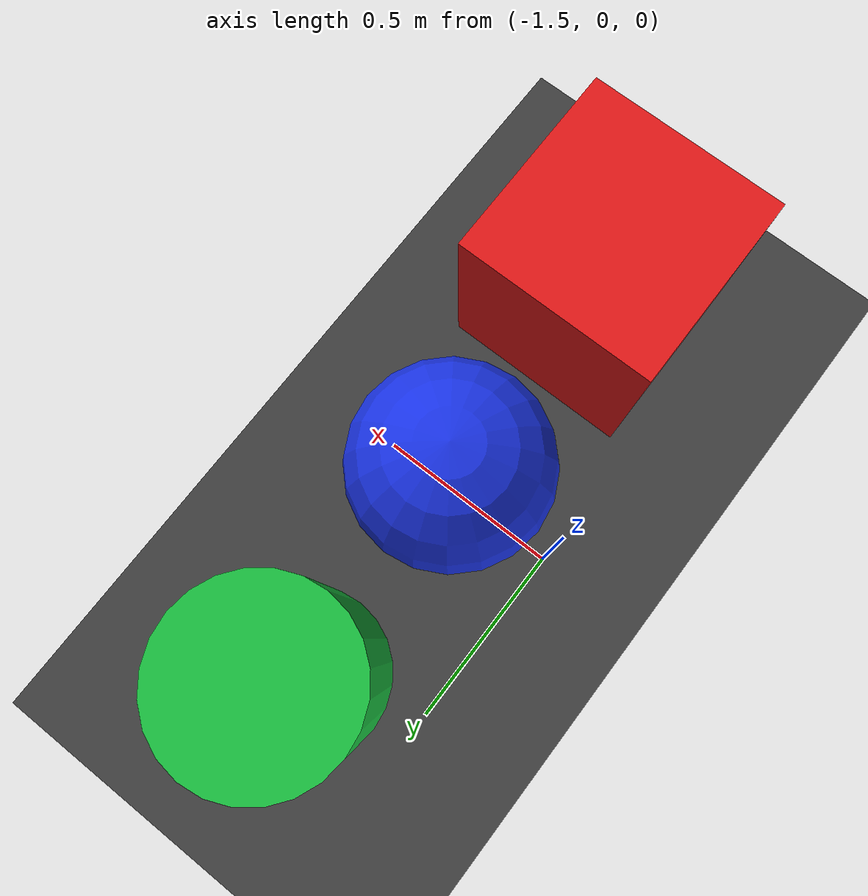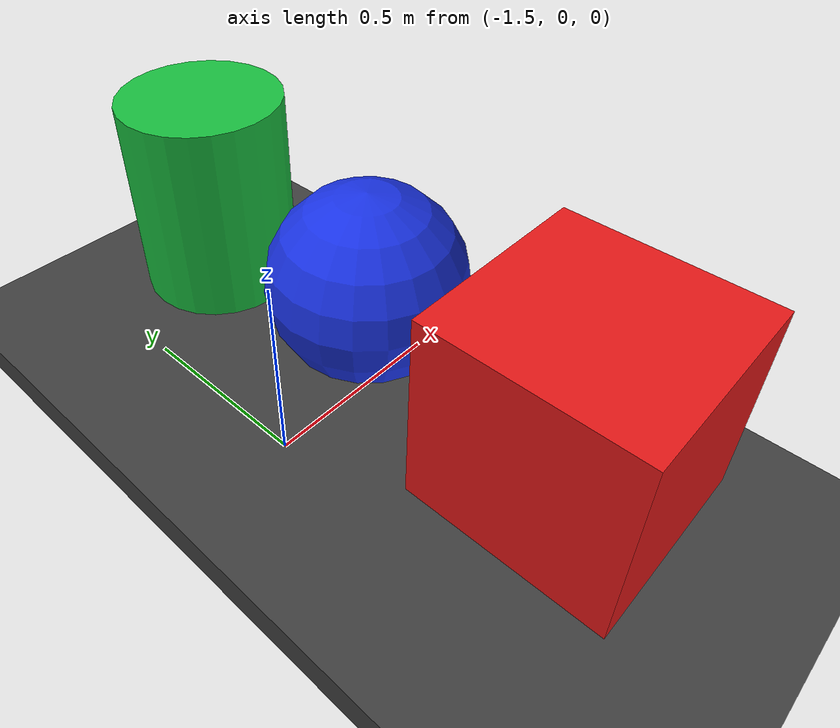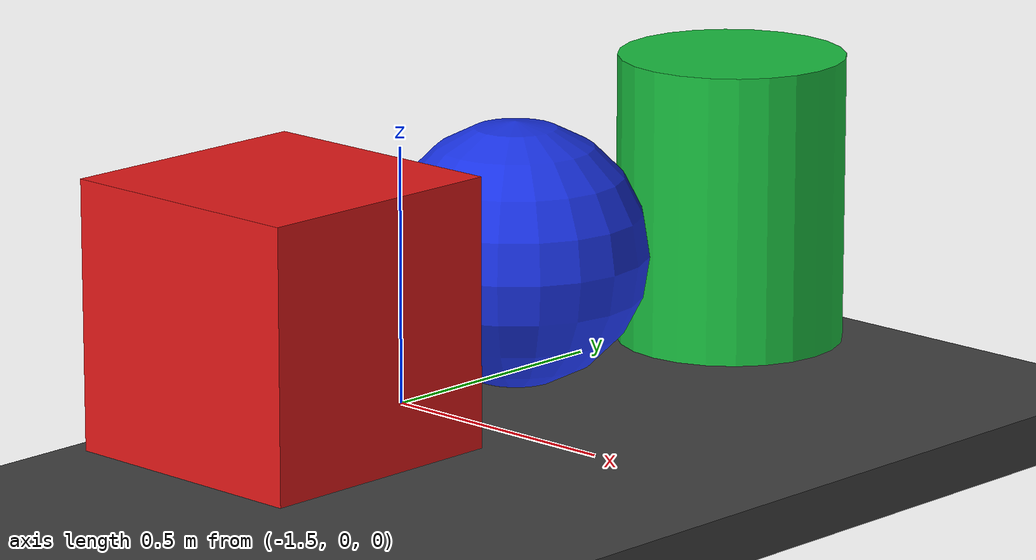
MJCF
<mujoco model="embodied_scientist">
  <option timestep="0.002" gravity="0 0 0"/>
  <visual>
    <map znear="0.01" zfar="50"/>
  </visual>
  <worldbody>
    <light pos="0 -3 6"/>
    <camera name="camera_0" pos="0 -8 4" xyaxes="1 0 0 0 0.45 0.893"/>
    <geom name="reference_table" type="box" pos="0 0 -0.08"
          size="4 2 0.05" rgba="0.25 0.25 0.25 1" contype="0" conaffinity="0"/>

    <body name="red_cube" pos="-1.2 -0.6 0.35">
      <joint name="red_cube_slide_x" type="slide" axis="1 0 0" damping="0"/>
      <geom name="red_cube_geom" type="box" size="0.25 0.25 0.25"
            mass="1.0" rgba="0.9 0.1 0.1 1" contype="0" conaffinity="0"/>
    </body>

    <body name="blue_sphere" pos="-1.2 0.0 0.35">
      <joint name="blue_sphere_slide_x" type="slide" axis="1 0 0" damping="0"/>
      <geom name="blue_sphere_geom" type="sphere" size="0.25"
            mass="2.0" rgba="0.1 0.2 0.9 1" contype="0" conaffinity="0"/>
    </body>

    <body name="green_cylinder" pos="-1.2 0.6 0.35">
      <joint name="green_cylinder_slide_x" type="slide" axis="1 0 0" damping="0"/>
      <geom name="green_cylinder_geom" type="cylinder" size="0.22 0.28"
            mass="4.0" rgba="0.1 0.75 0.25 1" contype="0" conaffinity="0"/>
    </body>
  </worldbody>
</mujoco>
